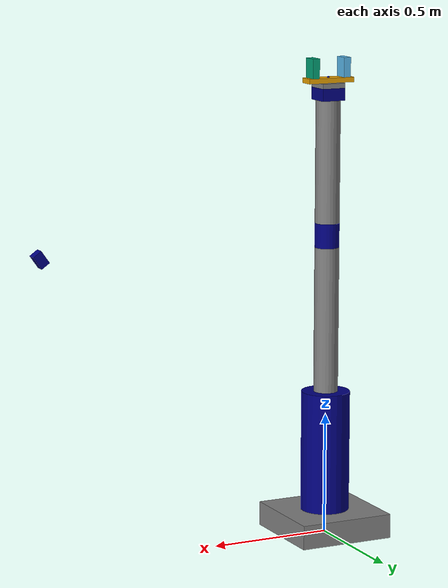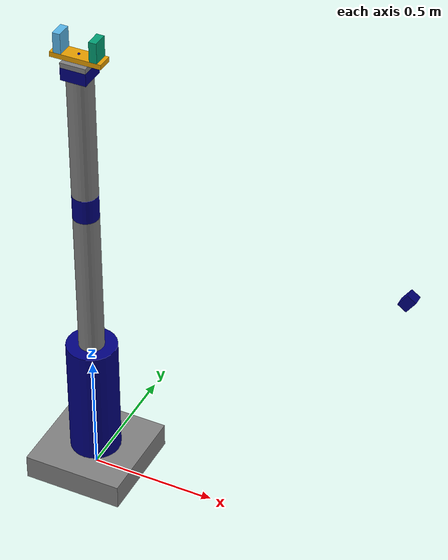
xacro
<?xml version="1.0"?>
<robot name="my_robot" xmlns:xacro="http://www.ros.org/wiki/xacro">

  <!-- 包含其他组件 -->
  <xacro:include filename="common_properties.xacro" />
  <xacro:include filename="arm.xacro" />
  <xacro:include filename="gripper.xacro"/>
  <xacro:include filename="rgbd_camera.xacro" />
  <xacro:include filename="my_robot.ros2_control.xacro" />

  <!-- 1. 基础连接：将来自 arm.xacro 的 base_link 固定到世界 -->
  <link name="world"/>
  <joint name="world_joint" type="fixed">
    <parent link="world"/>
    <child link="base_link"/>
    <origin xyz="0 0 0" rpy="0 0 0"/>
  </joint>

  <!-- 2. 手部连接：将来自 gripper.xacro 的 gripper_base_link 连到臂末端 -->
  <joint name="gripper_base_joint" type="fixed">
      <parent link="tool_link" />
      <child link="gripper_base_link" />
      <origin xyz="0 0 0" rpy="0 0 0" />
  </joint>

  <!-- 3. RGB-D camera: rigidly mounted to base_link with configurable offset -->
  <xacro:rgbd_camera
      parent_link="base_link"
      camera_name="camera_link"
      xyz="1.25 0.00 1.25"
      rpy="0 0.9599 3.1416" />

  <!-- 4. Gazebo 插件 -->
  <gazebo>
    <plugin filename="libgazebo_ros2_control.so" name="gazebo_ros2_control">
      <!-- 这里的路径必须指向你的配置文件 -->
      <parameters>$(find my_robot_bringup)/config/ros2_controllers.yaml</parameters>
    </plugin>
  </gazebo>

</robot>

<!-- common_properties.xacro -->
<robot xmlns:xacro="http://www.ros.org/wiki/xacro">

    <material name="grey">
        <color rgba="0.5 0.5 0.5 1" />
    </material>

    <material name="blue">
        <color rgba="0 0 0.5 1" />
    </material>

    <material name="red">
        <color rgba="0.8 0 0 1" />
    </material>

    <material name="dark_green">
        <color rgba="0 0.4 0 1" />
    </material>

    <material name="light_green">
        <color rgba="0 0.6 0 1" />
    </material>

</robot>

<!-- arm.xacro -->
<robot xmlns:xacro="http://www.ros.org/wiki/xacro" name="arm_robot">

    <!-- ================= 1. Base Link (底座) ================= -->
    <link name="base_link">
        <visual>
            <geometry><box size="0.4 0.4 0.1" /></geometry>
            <origin xyz="0 0 0.05" rpy="0 0 0" />
            <material name="grey" />
        </visual>
        <collision>
            <geometry><box size="0.4 0.4 0.1" /></geometry>
            <origin xyz="0 0 0.05" rpy="0 0 0" />
        </collision>
        <inertial>
            <mass value="2.0" />
            <origin xyz="0 0 0.05" />
            <inertia ixx="0.028333" ixy="0" ixz="0" iyy="0.028333" iyz="0" izz="0.053333" />
        </inertial>
    </link>
    <gazebo reference="base_link">
        <material>Gazebo/Grey</material>
    </gazebo>

    <!-- ================= 2. Shoulder Link (肩部) ================= -->
    <link name="shoulder_link">
        <visual>
            <geometry><cylinder radius="0.1" length="0.5"/></geometry>
            <origin xyz="0 0 0.25" rpy="0 0 0" />
            <material name="blue" />
        </visual>
        <collision>
            <geometry><cylinder radius="0.1" length="0.5"/></geometry>
            <origin xyz="0 0 0.25" rpy="0 0 0" />
        </collision>
        <inertial>
            <mass value="1.0" />
            <origin xyz="0 0 0.25" />
            <inertia ixx="0.023333" ixy="0" ixz="0" iyy="0.023333" iyz="0" izz="0.005" />
        </inertial>
    </link>
    <gazebo reference="shoulder_link">
        <material>Gazebo/Blue</material>
    </gazebo>

    <!-- ================= 3. Arm Link (大臂) ================= -->
    <link name="arm_link">
        <visual>
            <geometry><cylinder radius="0.05" length="0.6" /></geometry>
            <origin xyz="0 0 0.3" rpy="0 0 0" />
            <material name="grey" />
        </visual>
        <collision>
            <geometry><cylinder radius="0.05" length="0.6" /></geometry>
            <origin xyz="0 0 0.3" rpy="0 0 0" />
        </collision>
        <inertial>
            <mass value="0.8" />
            <origin xyz="0 0 0.3" />
            <inertia ixx="0.0245" ixy="0" ixz="0" iyy="0.0245" iyz="0" izz="0.001" />
        </inertial>
    </link>
    <gazebo reference="arm_link">
        <material>Gazebo/Grey</material>
    </gazebo>

    <!-- ================= 4. Elbow Link (弯肘关节) ================= -->
    <link name="elbow_link">
        <visual>
            <geometry><cylinder radius="0.05" length="0.1" /></geometry>
            <origin xyz="0 0 0.05" rpy="0 0 0" />
            <material name="blue" />
        </visual>
        <collision>
            <geometry><cylinder radius="0.05" length="0.1" /></geometry>
            <origin xyz="0 0 0.05" rpy="0 0 0" />
        </collision>
        <inertial>
            <mass value="0.2" />
            <origin xyz="0 0 0.05" />
            <inertia ixx="0.000291" ixy="0" ixz="0" iyy="0.000291" iyz="0" izz="0.00025" />
        </inertial>
    </link>
    <gazebo reference="elbow_link">
        <material>Gazebo/Blue</material>
    </gazebo>

    <!-- ================= 5. Forearm Link (小臂) ================= -->
    <link name="forearm_link">
        <visual>
            <geometry><cylinder radius="0.05" length="0.5" /></geometry>
            <origin xyz="0 0 0.25" rpy="0 0 0" />
            <material name="grey" />
        </visual>
        <collision>
            <geometry><cylinder radius="0.05" length="0.5" /></geometry>
            <origin xyz="0 0 0.25" rpy="0 0 0" />
        </collision>
        <inertial>
            <mass value="0.6" />
            <origin xyz="0 0 0.25" />
            <inertia ixx="0.012875" ixy="0" ixz="0" iyy="0.012875" iyz="0" izz="0.00075" />
        </inertial>
    </link>
    <gazebo reference="forearm_link">
        <material>Gazebo/Grey</material>
    </gazebo>

    <!-- ================= 6. Wrist Link (手腕) ================= -->
    <link name="wrist_link">
        <visual>
            <geometry><box size="0.1 0.1 0.05" /></geometry>
            <origin xyz="0 0 0.025" rpy="0 0 0" />
            <material name="blue" />
        </visual>
        <collision>
            <geometry><box size="0.1 0.1 0.05" /></geometry>
            <origin xyz="0 0 0.025" rpy="0 0 0" />
        </collision>
        <inertial>
            <mass value="0.2" />
            <origin xyz="0 0 0.025" />
            <inertia ixx="0.000208" ixy="0" ixz="0" iyy="0.000208" iyz="0" izz="0.000333" />
        </inertial>
    </link>
    <gazebo reference="wrist_link">
        <material>Gazebo/Blue</material>
    </gazebo>

    <!-- ================= 7. Hand Link (末端) ================= -->
    <link name="hand_link">
        <visual>
            <geometry><box size="0.1 0.1 0.02" /></geometry>
            <origin xyz="0 0 0.01" rpy="0 0 0" />
            <material name="grey" />
        </visual>
        <collision>
            <geometry><box size="0.1 0.1 0.02" /></geometry>
            <origin xyz="0 0 0.01" rpy="0 0 0" />
        </collision>
        <inertial>
            <mass value="0.1" />
            <origin xyz="0 0 0.01" />
            <inertia ixx="0.000086" ixy="0" ixz="0" iyy="0.000086" iyz="0" izz="0.000166" />
        </inertial>
    </link>
    <gazebo reference="hand_link">
        <material>Gazebo/Grey</material>
    </gazebo>

    <link name="tool_link" />

    <!-- ================= JOINTS (关节) ================= -->
    <joint name="joint1" type="revolute">
        <parent link="base_link" />
        <child link="shoulder_link" />
        <origin xyz="0 0 0.1" rpy="0 0 0" />
        <axis xyz="0 0 1" />
        <limit lower="-3.14" upper="3.14" effort="1000.0" velocity="1.0"/>
    </joint>

    <joint name="joint2" type="revolute">
        <parent link="shoulder_link" />
        <child link="arm_link" />
        <origin xyz="0 0 0.5" rpy="0 0 0" />
        <axis xyz="0 1 0" />
        <limit lower="0" upper="2.5" effort="1000.0" velocity="1.0"/>
    </joint>

    <joint name="joint3" type="revolute">
        <parent link="arm_link" />
        <child link="elbow_link" />
        <origin xyz="0 0 0.6" rpy="0 0 0" />
        <axis xyz="0 1 0" />
        <limit lower="0" upper="2.5" effort="1000.0" velocity="1.0"/>
    </joint>

    <joint name="joint4" type="revolute">
        <parent link="elbow_link" />
        <child link="forearm_link" />
        <origin xyz="0 0 0.1" rpy="0 0 0" />
        <axis xyz="0 0 1" />
        <limit lower="-3.14" upper="3.14" effort="1000.0" velocity="1.0"/>
    </joint>

    <joint name="joint5" type="revolute">
        <parent link="forearm_link" />
        <child link="wrist_link" />
        <origin xyz="0 0 0.5" rpy="0 0 0" />
        <axis xyz="0 1 0" />
        <limit lower="-1.57" upper="1.57" effort="1000.0" velocity="1.0"/>
    </joint>

    <joint name="joint6" type="continuous">
        <parent link="wrist_link" />
        <child link="hand_link" />
        <origin xyz="0 0 0.05" rpy="0 0 0" />
        <axis xyz="0 0 1" />
    </joint>

    <joint name="hand_tool_joint" type="fixed">
        <parent link="hand_link" />
        <child link="tool_link" />
        <origin xyz="0 0 0.02" rpy="0 0 0" />
    </joint>

</robot>

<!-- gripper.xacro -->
<robot xmlns:xacro="http://www.ros.org/wiki/xacro">

    <!-- 1. 夹持器底座 -->
    <link name="gripper_base_link">
        <visual>
            <geometry><box size="0.2 0.06 0.02" /></geometry>
            <origin xyz="0 0 0.01" rpy="0 0 0" />
        </visual>
        <collision>
            <geometry><box size="0.2 0.06 0.02" /></geometry>
            <origin xyz="0 0 0.01" rpy="0 0 0" />
        </collision>
        <inertial>
            <mass value="0.5" />
            <origin xyz="0 0 0.01" />
            <inertia ixx="0.00016667" ixy="0" ixz="0" iyy="0.00168333" iyz="0" izz="0.00181667" />
        </inertial>
    </link>

    <!-- 2. 左手指 -->
    <link name="gripper_left_finger_link">
        <visual>
            <geometry><box size="0.03 0.06 0.08" /></geometry>
            <origin xyz="0 0 0.04" rpy="0 0 0" />
        </visual>
        <collision>
            <geometry><box size="0.03 0.06 0.08" /></geometry>
            <origin xyz="0 0 0.04" rpy="0 0 0" />
        </collision>
        <inertial>
            <mass value="0.12" />
            <origin xyz="0 0 0.04" />
            <inertia ixx="0.0001" ixy="0" ixz="0" iyy="0.000073" iyz="0" izz="0.000045" />
        </inertial>
    </link>

    <!-- 3. 右手指 -->
    <link name="gripper_right_finger_link">
        <visual>
            <geometry><box size="0.03 0.06 0.08" /></geometry>
            <origin xyz="0 0 0.04" rpy="0 0 0" />
        </visual>
        <collision>
            <geometry><box size="0.03 0.06 0.08" /></geometry>
            <origin xyz="0 0 0.04" rpy="0 0 0" />
        </collision>
        <inertial>
            <mass value="0.12" />
            <origin xyz="0 0 0.04" />
            <inertia ixx="0.0001" ixy="0" ixz="0" iyy="0.000073" iyz="0" izz="0.000045" />
        </inertial>
    </link>

    <!-- attach_link -->
    <link name="attach_link">
    <visual>
        <geometry><sphere radius="0.005" /></geometry>
        <origin xyz="0 0 0" rpy="0 0 0" />
        <material name="blue" />
    </visual>
    <inertial>
        <mass value="0.001" />
        <origin xyz="0 0 0" />
        <inertia ixx="0.000001" ixy="0" ixz="0" iyy="0.000001" iyz="0" izz="0.000001" />
    </inertial>
    </link>

    <!-- finger属性 -->
    <gazebo reference="gripper_left_finger_link">
        <mu1>10.0</mu1>
        <mu2>10.0</mu2>
        <kp>100000.0</kp>
        <kd>100.0</kd>
        <minDepth>0.001</minDepth>
        <maxVel>0.01</maxVel>
    </gazebo>
    <gazebo reference="gripper_right_finger_link">
        <mu1>10.0</mu1>
        <mu2>10.0</mu2>
        <kp>100000.0</kp>
        <kd>100.0</kd>
        <minDepth>0.001</minDepth>
        <maxVel>0.01</maxVel>
    </gazebo>

    <!-- 4. 关节定义 (现在是两个互相独立的平移关节) -->
    <joint name="gripper_left_finger_joint" type="prismatic">
        <parent link="gripper_base_link" />
        <child link="gripper_left_finger_link" />
        <origin xyz="-0.07 0 0.02" rpy="0 0 0" />
        <axis xyz="1 0 0" />
        <limit effort="40.0" velocity="0.05" lower="0.0" upper="0.04" />
        <dynamics damping="20.0" friction="2.0" />
    </joint>

    <joint name="gripper_right_finger_joint" type="prismatic">
        <parent link="gripper_base_link" />
        <child link="gripper_right_finger_link" />
        <origin xyz="0.07 0 0.02" rpy="0 0 0" />
        <axis xyz="1 0 0" />
        <limit effort="40.0" velocity="0.05" lower="-0.04" upper="0.0" />
        <dynamics damping="20.0" friction="2.0" />
    </joint>

    <joint name="gripper_attach_joint" type="fixed">
        <parent link="gripper_base_link" />
        <child link="attach_link" />
        <origin xyz="0 0 0.02" rpy="0 0 0" />
    </joint>

    <gazebo reference="gripper_attach_joint">
        <preserveFixedJoint>true</preserveFixedJoint>
    </gazebo>

</robot>

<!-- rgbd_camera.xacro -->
<robot xmlns:xacro="http://www.ros.org/wiki/xacro">

  <xacro:macro name="rgbd_camera" params="parent_link camera_name xyz rpy">
    <link name="${camera_name}">
      <visual>
        <origin xyz="0 0 0" rpy="0 0 0" />
        <geometry>
          <box size="0.06 0.04 0.04" />
        </geometry>
        <material name="blue" />
      </visual>
      <collision>
        <origin xyz="0 0 0" rpy="0 0 0" />
        <geometry>
          <box size="0.06 0.04 0.04" />
        </geometry>
      </collision>
      <inertial>
        <origin xyz="0 0 0" rpy="0 0 0" />
        <mass value="0.08" />
        <inertia ixx="0.00003" ixy="0.0" ixz="0.0" iyy="0.00003" iyz="0.0" izz="0.00003" />
      </inertial>
    </link>

    <joint name="${camera_name}_joint" type="fixed">
      <parent link="${parent_link}" />
      <child link="${camera_name}" />
      <origin xyz="${xyz}" rpy="${rpy}" />
    </joint>

    <link name="${camera_name}_optical">
      <inertial>
        <origin xyz="0 0 0" rpy="0 0 0" />
        <mass value="0.001" />
        <inertia ixx="0.000001" ixy="0.0" ixz="0.0" iyy="0.000001" iyz="0.0" izz="0.000001" />
      </inertial>
    </link>

    <joint name="${camera_name}_optical_joint" type="fixed">
      <parent link="${camera_name}" />
      <child link="${camera_name}_optical" />
      <origin xyz="0 0 0" rpy="-1.5708 0 -1.5708" />
    </joint>

    <gazebo reference="${camera_name}">
      <sensor name="${camera_name}_sensor" type="depth">
        <always_on>true</always_on>
        <update_rate>30.0</update_rate>
        <visualize>true</visualize>
        <camera>
          <horizontal_fov>1.0472</horizontal_fov>
          <image>
            <width>640</width>
            <height>480</height>
            <format>R8G8B8</format>
          </image>
          <clip>
            <near>0.05</near>
            <far>5.0</far>
          </clip>
        </camera>
        <plugin name="${camera_name}_plugin" filename="libgazebo_ros_camera.so">
          <camera_name>${camera_name}</camera_name>
          <frame_name>${camera_name}_optical</frame_name>
          <image_topic_name>/camera/rgb/image_raw</image_topic_name>
          <camera_info_topic_name>/camera/rgb/camera_info</camera_info_topic_name>
          <depth_image_topic_name>/camera/depth/image_raw</depth_image_topic_name>
          <depth_image_camera_info_topic_name>/camera/depth/camera_info</depth_image_camera_info_topic_name>
          <point_cloud_topic_name>/camera/depth/points</point_cloud_topic_name>
        </plugin>
      </sensor>
    </gazebo>

    <gazebo reference="${camera_name}">
      <material>Gazebo/Blue</material>
    </gazebo>

  </xacro:macro>

</robot>
